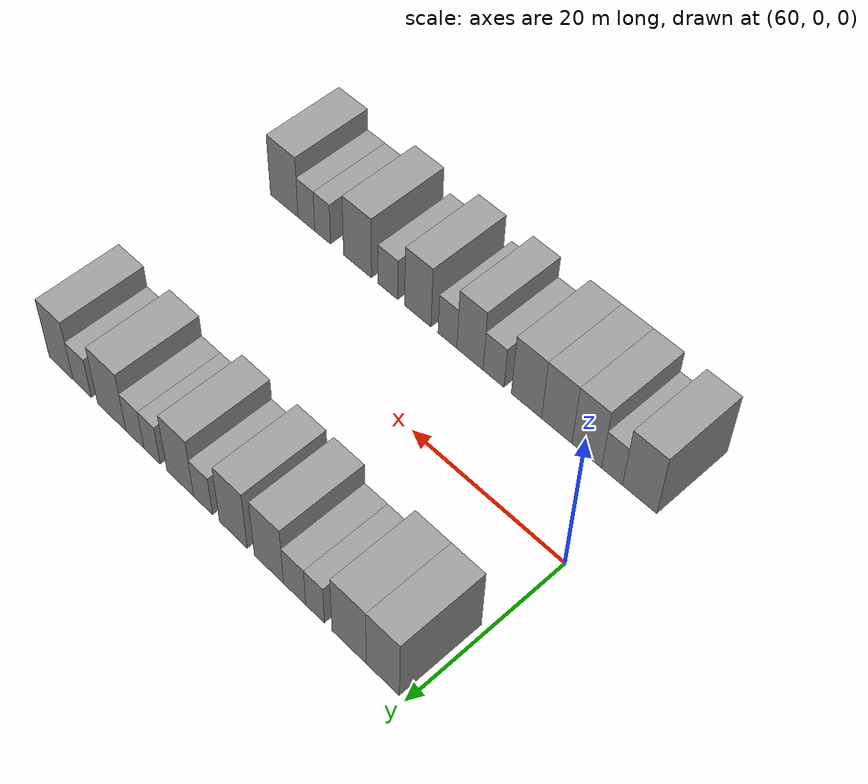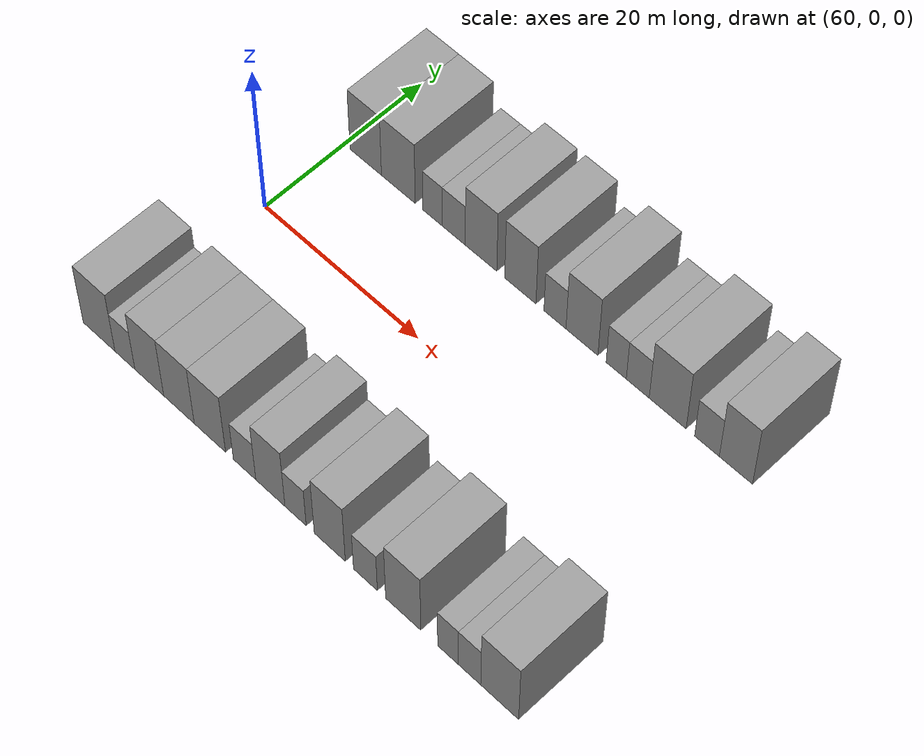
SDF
<sdf version="1.6">
 <world name="default">
  <model name="building_15">
   <static>1</static>
   <pose>62.8452 15.0000 0 0.000000 0.000000 1.570796</pose>
   <link name="link">
    <pose>0 0 4.50 0 0 0</pose>
    <collision name="collision"><geometry><box><size>10.0000 4.1878 9.0000</size></box></geometry></collision>
    <visual name="visual">
     <cast_shadows>0</cast_shadows>
     <geometry><box><size>10.0000 4.1878 9.0000</size></box></geometry>
     <material>
      <script>
       <uri>model://grey_wall/materials/scripts</uri>
       <uri>model://grey_wall/materials/textures</uri>
       <name>vrc/grey_wall</name>
      </script>
     </material>
    </visual>
   </link>
  </model>
  <model name="building_16">
   <static>1</static>
   <pose>67.1615 15.0000 0 0.000000 0.000000 1.570796</pose>
   <link name="link">
    <pose>0 0 4.50 0 0 0</pose>
    <collision name="collision"><geometry><box><size>10.0000 4.4448 9.0000</size></box></geometry></collision>
    <visual name="visual">
     <cast_shadows>0</cast_shadows>
     <geometry><box><size>10.0000 4.4448 9.0000</size></box></geometry>
     <material>
      <script>
       <uri>model://grey_wall/materials/scripts</uri>
       <uri>model://grey_wall/materials/textures</uri>
       <name>vrc/grey_wall</name>
      </script>
     </material>
    </visual>
   </link>
  </model>
  <model name="building_17">
   <static>1</static>
   <pose>71.6301 15.0000 0 0.000000 0.000000 1.570796</pose>
   <link name="link">
    <pose>0 0 3.00 0 0 0</pose>
    <collision name="collision"><geometry><box><size>10.0000 2.4925 6.0000</size></box></geometry></collision>
    <visual name="visual">
     <cast_shadows>0</cast_shadows>
     <geometry><box><size>10.0000 2.4925 6.0000</size></box></geometry>
     <material>
      <script>
       <uri>model://grey_wall/materials/scripts</uri>
       <uri>model://grey_wall/materials/textures</uri>
       <name>vrc/grey_wall</name>
      </script>
     </material>
    </visual>
   </link>
  </model>
  <model name="building_18">
   <static>1</static>
   <pose>74.3623 15.0000 0 0.000000 0.000000 1.570796</pose>
   <link name="link">
    <pose>0 0 3.00 0 0 0</pose>
    <collision name="collision"><geometry><box><size>10.0000 2.9719 6.0000</size></box></geometry></collision>
    <visual name="visual">
     <cast_shadows>0</cast_shadows>
     <geometry><box><size>10.0000 2.9719 6.0000</size></box></geometry>
     <material>
      <script>
       <uri>model://grey_wall/materials/scripts</uri>
       <uri>model://grey_wall/materials/textures</uri>
       <name>vrc/grey_wall</name>
      </script>
     </material>
    </visual>
   </link>
  </model>
  <model name="building_19">
   <static>1</static>
   <pose>77.8619 15.0000 0 0.000000 0.000000 1.570796</pose>
   <link name="link">
    <pose>0 0 4.50 0 0 0</pose>
    <collision name="collision"><geometry><box><size>10.0000 4.0272 9.0000</size></box></geometry></collision>
    <visual name="visual">
     <cast_shadows>0</cast_shadows>
     <geometry><box><size>10.0000 4.0272 9.0000</size></box></geometry>
     <material>
      <script>
       <uri>model://grey_wall/materials/scripts</uri>
       <uri>model://grey_wall/materials/textures</uri>
       <name>vrc/grey_wall</name>
      </script>
     </material>
    </visual>
   </link>
  </model>
  <model name="building_20">
   <static>1</static>
   <pose>82.8364 15.0000 0 0.000000 0.000000 1.570796</pose>
   <link name="link">
    <pose>0 0 4.50 0 0 0</pose>
    <collision name="collision"><geometry><box><size>10.0000 3.9218 9.0000</size></box></geometry></collision>
    <visual name="visual">
     <cast_shadows>0</cast_shadows>
     <geometry><box><size>10.0000 3.9218 9.0000</size></box></geometry>
     <material>
      <script>
       <uri>model://grey_wall/materials/scripts</uri>
       <uri>model://grey_wall/materials/textures</uri>
       <name>vrc/grey_wall</name>
      </script>
     </material>
    </visual>
   </link>
  </model>
  <model name="building_21">
   <static>1</static>
   <pose>87.1644 15.0000 0 0.000000 0.000000 1.570796</pose>
   <link name="link">
    <pose>0 0 3.00 0 0 0</pose>
    <collision name="collision"><geometry><box><size>10.0000 2.7342 6.0000</size></box></geometry></collision>
    <visual name="visual">
     <cast_shadows>0</cast_shadows>
     <geometry><box><size>10.0000 2.7342 6.0000</size></box></geometry>
     <material>
      <script>
       <uri>model://grey_wall/materials/scripts</uri>
       <uri>model://grey_wall/materials/textures</uri>
       <name>vrc/grey_wall</name>
      </script>
     </material>
    </visual>
   </link>
  </model>
  <model name="building_22">
   <static>1</static>
   <pose>90.4941 15.0000 0 0.000000 0.000000 1.570796</pose>
   <link name="link">
    <pose>0 0 4.50 0 0 0</pose>
    <collision name="collision"><geometry><box><size>10.0000 3.9252 9.0000</size></box></geometry></collision>
    <visual name="visual">
     <cast_shadows>0</cast_shadows>
     <geometry><box><size>10.0000 3.9252 9.0000</size></box></geometry>
     <material>
      <script>
       <uri>model://grey_wall/materials/scripts</uri>
       <uri>model://grey_wall/materials/textures</uri>
       <name>vrc/grey_wall</name>
      </script>
     </material>
    </visual>
   </link>
  </model>
  <model name="building_23">
   <static>1</static>
   <pose>94.6765 15.0000 0 0.000000 0.000000 1.570796</pose>
   <link name="link">
    <pose>0 0 3.00 0 0 0</pose>
    <collision name="collision"><geometry><box><size>10.0000 2.4396 6.0000</size></box></geometry></collision>
    <visual name="visual">
     <cast_shadows>0</cast_shadows>
     <geometry><box><size>10.0000 2.4396 6.0000</size></box></geometry>
     <material>
      <script>
       <uri>model://grey_wall/materials/scripts</uri>
       <uri>model://grey_wall/materials/textures</uri>
       <name>vrc/grey_wall</name>
      </script>
     </material>
    </visual>
   </link>
  </model>
  <model name="building_24">
   <static>1</static>
   <pose>97.2753 15.0000 0 0.000000 0.000000 1.570796</pose>
   <link name="link">
    <pose>0 0 3.00 0 0 0</pose>
    <collision name="collision"><geometry><box><size>10.0000 2.7580 6.0000</size></box></geometry></collision>
    <visual name="visual">
     <cast_shadows>0</cast_shadows>
     <geometry><box><size>10.0000 2.7580 6.0000</size></box></geometry>
     <material>
      <script>
       <uri>model://grey_wall/materials/scripts</uri>
       <uri>model://grey_wall/materials/textures</uri>
       <name>vrc/grey_wall</name>
      </script>
     </material>
    </visual>
   </link>
  </model>
  <model name="building_25">
   <static>1</static>
   <pose>100.8544 15.0000 0 0.000000 0.000000 1.570796</pose>
   <link name="link">
    <pose>0 0 4.50 0 0 0</pose>
    <collision name="collision"><geometry><box><size>10.0000 4.4003 9.0000</size></box></geometry></collision>
    <visual name="visual">
     <cast_shadows>0</cast_shadows>
     <geometry><box><size>10.0000 4.4003 9.0000</size></box></geometry>
     <material>
      <script>
       <uri>model://grey_wall/materials/scripts</uri>
       <uri>model://grey_wall/materials/textures</uri>
       <name>vrc/grey_wall</name>
      </script>
     </material>
    </visual>
   </link>
  </model>
  <model name="building_26">
   <static>1</static>
   <pose>105.5059 15.0000 0 0.000000 0.000000 1.570796</pose>
   <link name="link">
    <pose>0 0 3.00 0 0 0</pose>
    <collision name="collision"><geometry><box><size>10.0000 2.9027 6.0000</size></box></geometry></collision>
    <visual name="visual">
     <cast_shadows>0</cast_shadows>
     <geometry><box><size>10.0000 2.9027 6.0000</size></box></geometry>
     <material>
      <script>
       <uri>model://grey_wall/materials/scripts</uri>
       <uri>model://grey_wall/materials/textures</uri>
       <name>vrc/grey_wall</name>
      </script>
     </material>
    </visual>
   </link>
  </model>
  <model name="building_27">
   <static>1</static>
   <pose>108.8884 15.0000 0 0.000000 0.000000 1.570796</pose>
   <link name="link">
    <pose>0 0 4.50 0 0 0</pose>
    <collision name="collision"><geometry><box><size>10.0000 3.8622 9.0000</size></box></geometry></collision>
    <visual name="visual">
     <cast_shadows>0</cast_shadows>
     <geometry><box><size>10.0000 3.8622 9.0000</size></box></geometry>
     <material>
      <script>
       <uri>model://grey_wall/materials/scripts</uri>
       <uri>model://grey_wall/materials/textures</uri>
       <name>vrc/grey_wall</name>
      </script>
     </material>
    </visual>
   </link>
  </model>
  <model name="building_66">
   <static>1</static>
   <pose>59.9637 -15.0000 0 0.000000 0.000000 1.570796</pose>
   <link name="link">
    <pose>0 0 4.50 0 0 0</pose>
    <collision name="collision"><geometry><box><size>10.0000 4.2694 9.0000</size></box></geometry></collision>
    <visual name="visual">
     <cast_shadows>0</cast_shadows>
     <geometry><box><size>10.0000 4.2694 9.0000</size></box></geometry>
     <material>
      <script>
       <uri>model://grey_wall/materials/scripts</uri>
       <uri>model://grey_wall/materials/textures</uri>
       <name>vrc/grey_wall</name>
      </script>
     </material>
    </visual>
   </link>
  </model>
  <model name="building_67">
   <static>1</static>
   <pose>63.4255 -15.0000 0 0.000000 0.000000 1.570796</pose>
   <link name="link">
    <pose>0 0 3.00 0 0 0</pose>
    <collision name="collision"><geometry><box><size>10.0000 2.6542 6.0000</size></box></geometry></collision>
    <visual name="visual">
     <cast_shadows>0</cast_shadows>
     <geometry><box><size>10.0000 2.6542 6.0000</size></box></geometry>
     <material>
      <script>
       <uri>model://grey_wall/materials/scripts</uri>
       <uri>model://grey_wall/materials/textures</uri>
       <name>vrc/grey_wall</name>
      </script>
     </material>
    </visual>
   </link>
  </model>
  <model name="building_68">
   <static>1</static>
   <pose>66.6606 -15.0000 0 0.000000 0.000000 1.570796</pose>
   <link name="link">
    <pose>0 0 4.50 0 0 0</pose>
    <collision name="collision"><geometry><box><size>10.0000 3.8160 9.0000</size></box></geometry></collision>
    <visual name="visual">
     <cast_shadows>0</cast_shadows>
     <geometry><box><size>10.0000 3.8160 9.0000</size></box></geometry>
     <material>
      <script>
       <uri>model://grey_wall/materials/scripts</uri>
       <uri>model://grey_wall/materials/textures</uri>
       <name>vrc/grey_wall</name>
      </script>
     </material>
    </visual>
   </link>
  </model>
  <model name="building_69">
   <static>1</static>
   <pose>70.5635 -15.0000 0 0.000000 0.000000 1.570796</pose>
   <link name="link">
    <pose>0 0 4.50 0 0 0</pose>
    <collision name="collision"><geometry><box><size>10.0000 3.9898 9.0000</size></box></geometry></collision>
    <visual name="visual">
     <cast_shadows>0</cast_shadows>
     <geometry><box><size>10.0000 3.9898 9.0000</size></box></geometry>
     <material>
      <script>
       <uri>model://grey_wall/materials/scripts</uri>
       <uri>model://grey_wall/materials/textures</uri>
       <name>vrc/grey_wall</name>
      </script>
     </material>
    </visual>
   </link>
  </model>
  <model name="building_70">
   <static>1</static>
   <pose>74.5775 -15.0000 0 0.000000 0.000000 1.570796</pose>
   <link name="link">
    <pose>0 0 4.50 0 0 0</pose>
    <collision name="collision"><geometry><box><size>10.0000 4.0384 9.0000</size></box></geometry></collision>
    <visual name="visual">
     <cast_shadows>0</cast_shadows>
     <geometry><box><size>10.0000 4.0384 9.0000</size></box></geometry>
     <material>
      <script>
       <uri>model://grey_wall/materials/scripts</uri>
       <uri>model://grey_wall/materials/textures</uri>
       <name>vrc/grey_wall</name>
      </script>
     </material>
    </visual>
   </link>
  </model>
  <model name="building_71">
   <static>1</static>
   <pose>79.0255 -15.0000 0 0.000000 0.000000 1.570796</pose>
   <link name="link">
    <pose>0 0 3.00 0 0 0</pose>
    <collision name="collision"><geometry><box><size>10.0000 2.8575 6.0000</size></box></geometry></collision>
    <visual name="visual">
     <cast_shadows>0</cast_shadows>
     <geometry><box><size>10.0000 2.8575 6.0000</size></box></geometry>
     <material>
      <script>
       <uri>model://grey_wall/materials/scripts</uri>
       <uri>model://grey_wall/materials/textures</uri>
       <name>vrc/grey_wall</name>
      </script>
     </material>
    </visual>
   </link>
  </model>
  <model name="building_72">
   <static>1</static>
   <pose>82.2898 -15.0000 0 0.000000 0.000000 1.570796</pose>
   <link name="link">
    <pose>0 0 4.50 0 0 0</pose>
    <collision name="collision"><geometry><box><size>10.0000 3.6711 9.0000</size></box></geometry></collision>
    <visual name="visual">
     <cast_shadows>0</cast_shadows>
     <geometry><box><size>10.0000 3.6711 9.0000</size></box></geometry>
     <material>
      <script>
       <uri>model://grey_wall/materials/scripts</uri>
       <uri>model://grey_wall/materials/textures</uri>
       <name>vrc/grey_wall</name>
      </script>
     </material>
    </visual>
   </link>
  </model>
  <model name="building_73">
   <static>1</static>
   <pose>85.4542 -15.0000 0 0.000000 0.000000 1.570796</pose>
   <link name="link">
    <pose>0 0 3.00 0 0 0</pose>
    <collision name="collision"><geometry><box><size>10.0000 2.6576 6.0000</size></box></geometry></collision>
    <visual name="visual">
     <cast_shadows>0</cast_shadows>
     <geometry><box><size>10.0000 2.6576 6.0000</size></box></geometry>
     <material>
      <script>
       <uri>model://grey_wall/materials/scripts</uri>
       <uri>model://grey_wall/materials/textures</uri>
       <name>vrc/grey_wall</name>
      </script>
     </material>
    </visual>
   </link>
  </model>
  <model name="building_74">
   <static>1</static>
   <pose>89.6937 -15.0000 0 0.000000 0.000000 1.570796</pose>
   <link name="link">
    <pose>0 0 4.50 0 0 0</pose>
    <collision name="collision"><geometry><box><size>10.0000 3.8214 9.0000</size></box></geometry></collision>
    <visual name="visual">
     <cast_shadows>0</cast_shadows>
     <geometry><box><size>10.0000 3.8214 9.0000</size></box></geometry>
     <material>
      <script>
       <uri>model://grey_wall/materials/scripts</uri>
       <uri>model://grey_wall/materials/textures</uri>
       <name>vrc/grey_wall</name>
      </script>
     </material>
    </visual>
   </link>
  </model>
  <model name="building_75">
   <static>1</static>
   <pose>94.0537 -15.0000 0 0.000000 0.000000 1.570796</pose>
   <link name="link">
    <pose>0 0 3.00 0 0 0</pose>
    <collision name="collision"><geometry><box><size>10.0000 2.8985 6.0000</size></box></geometry></collision>
    <visual name="visual">
     <cast_shadows>0</cast_shadows>
     <geometry><box><size>10.0000 2.8985 6.0000</size></box></geometry>
     <material>
      <script>
       <uri>model://grey_wall/materials/scripts</uri>
       <uri>model://grey_wall/materials/textures</uri>
       <name>vrc/grey_wall</name>
      </script>
     </material>
    </visual>
   </link>
  </model>
  <model name="building_76">
   <static>1</static>
   <pose>98.6105 -15.0000 0 0.000000 0.000000 1.570796</pose>
   <link name="link">
    <pose>0 0 4.50 0 0 0</pose>
    <collision name="collision"><geometry><box><size>10.0000 4.2151 9.0000</size></box></geometry></collision>
    <visual name="visual">
     <cast_shadows>0</cast_shadows>
     <geometry><box><size>10.0000 4.2151 9.0000</size></box></geometry>
     <material>
      <script>
       <uri>model://grey_wall/materials/scripts</uri>
       <uri>model://grey_wall/materials/textures</uri>
       <name>vrc/grey_wall</name>
      </script>
     </material>
    </visual>
   </link>
  </model>
  <model name="building_77">
   <static>1</static>
   <pose>103.9355 -15.0000 0 0.000000 0.000000 1.570796</pose>
   <link name="link">
    <pose>0 0 3.00 0 0 0</pose>
    <collision name="collision"><geometry><box><size>10.0000 2.4348 6.0000</size></box></geometry></collision>
    <visual name="visual">
     <cast_shadows>0</cast_shadows>
     <geometry><box><size>10.0000 2.4348 6.0000</size></box></geometry>
     <material>
      <script>
       <uri>model://grey_wall/materials/scripts</uri>
       <uri>model://grey_wall/materials/textures</uri>
       <name>vrc/grey_wall</name>
      </script>
     </material>
    </visual>
   </link>
  </model>
  <model name="building_78">
   <static>1</static>
   <pose>106.4624 -15.0000 0 0.000000 0.000000 1.570796</pose>
   <link name="link">
    <pose>0 0 3.00 0 0 0</pose>
    <collision name="collision"><geometry><box><size>10.0000 2.6191 6.0000</size></box></geometry></collision>
    <visual name="visual">
     <cast_shadows>0</cast_shadows>
     <geometry><box><size>10.0000 2.6191 6.0000</size></box></geometry>
     <material>
      <script>
       <uri>model://grey_wall/materials/scripts</uri>
       <uri>model://grey_wall/materials/textures</uri>
       <name>vrc/grey_wall</name>
      </script>
     </material>
    </visual>
   </link>
  </model>
  <model name="building_79">
   <static>1</static>
   <pose>109.9607 -15.0000 0 0.000000 0.000000 1.570796</pose>
   <link name="link">
    <pose>0 0 4.50 0 0 0</pose>
    <collision name="collision"><geometry><box><size>10.0000 4.3775 9.0000</size></box></geometry></collision>
    <visual name="visual">
     <cast_shadows>0</cast_shadows>
     <geometry><box><size>10.0000 4.3775 9.0000</size></box></geometry>
     <material>
      <script>
       <uri>model://grey_wall/materials/scripts</uri>
       <uri>model://grey_wall/materials/textures</uri>
       <name>vrc/grey_wall</name>
      </script>
     </material>
    </visual>
   </link>
  </model>
 </world>
</sdf>
